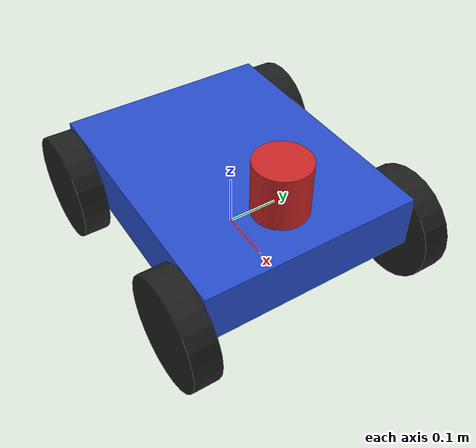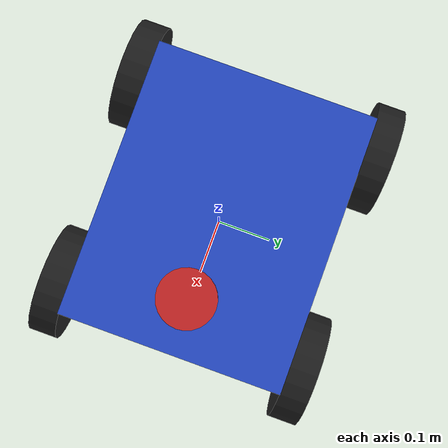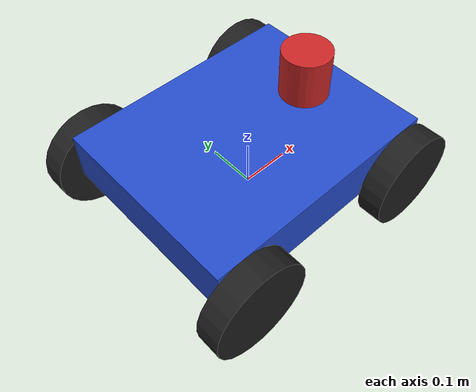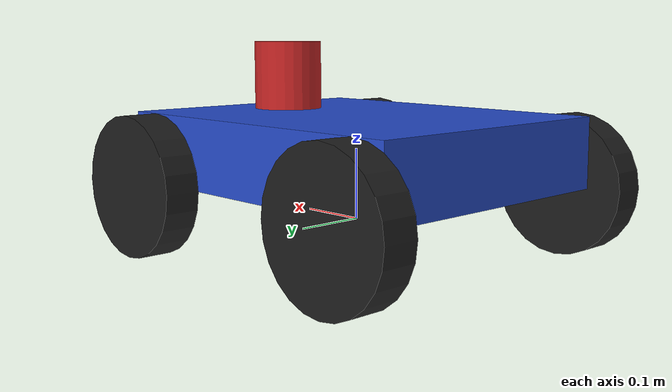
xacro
<?xml version="1.0"?>
<robot xmlns:xacro="http://www.ros.org/wiki/xacro" name="mecanum_robot">

  <!-- Include materials -->
  <xacro:include filename="$(find mecanum_description)/urdf/materials.xacro"/>

  <!-- Robot parameters -->
  <xacro:property name="base_width" value="0.4"/>
  <xacro:property name="base_length" value="0.5"/>
  <xacro:property name="base_height" value="0.1"/>
  <xacro:property name="wheel_radius" value="0.1"/>
  <xacro:property name="wheel_width" value="0.05"/>
  <xacro:property name="wheel_offset_x" value="0.2"/>
  <xacro:property name="wheel_offset_y" value="0.225"/>

  <!-- Base link -->
  <link name="base_link">
    <visual>
      <origin xyz="0 0 0" rpy="0 0 0"/>
      <geometry>
        <box size="${base_length} ${base_width} ${base_height}"/>
      </geometry>
      <material name="blue"/>
    </visual>
    <collision>
      <origin xyz="0 0 0" rpy="0 0 0"/>
      <geometry>
        <box size="${base_length} ${base_width} ${base_height}"/>
      </geometry>
    </collision>
    <inertial>
      <origin xyz="0 0 0" rpy="0 0 0"/>
      <mass value="10.0"/>
      <inertia ixx="0.133" ixy="0.0" ixz="0.0" iyy="0.208" iyz="0.0" izz="0.275"/>
    </inertial>
  </link>

  <!-- Base footprint (for navigation) -->
  <link name="base_footprint"/>

  <joint name="base_joint" type="fixed">
    <parent link="base_footprint"/>
    <child link="base_link"/>
    <origin xyz="0.0 0.0 ${wheel_radius}" rpy="0 0 0"/>
  </joint>

  <!-- Mecanum wheels macro -->
  <xacro:macro name="mecanum_wheel" params="prefix reflect_x reflect_y">
    <link name="${prefix}_wheel">
      <visual>
        <origin xyz="0 0 0" rpy="${pi/2} 0 0"/>
        <geometry>
          <cylinder radius="${wheel_radius}" length="${wheel_width}"/>
        </geometry>
        <material name="black"/>
      </visual>
      <collision>
        <origin xyz="0 0 0" rpy="${pi/2} 0 0"/>
        <geometry>
          <cylinder radius="${wheel_radius}" length="${wheel_width}"/>
        </geometry>
      </collision>
      <inertial>
        <origin xyz="0 0 0" rpy="${pi/2} 0 0"/>
        <mass value="1.0"/>
        <inertia ixx="0.0052" ixy="0.0" ixz="0.0" iyy="0.0052" iyz="0.0" izz="0.01"/>
      </inertial>
    </link>

    <joint name="${prefix}_wheel_joint" type="continuous">
      <parent link="base_link"/>
      <child link="${prefix}_wheel"/>
      <origin xyz="${reflect_x * wheel_offset_x} ${reflect_y * wheel_offset_y} ${-base_height/2}" rpy="0 0 0"/>
      <axis xyz="0 1 0"/>
    </joint>
  </xacro:macro>

  <!-- Create all four mecanum wheels -->
  <xacro:mecanum_wheel prefix="front_left" reflect_x="1" reflect_y="1"/>
  <xacro:mecanum_wheel prefix="front_right" reflect_x="1" reflect_y="-1"/>
  <xacro:mecanum_wheel prefix="rear_left" reflect_x="-1" reflect_y="1"/>
  <xacro:mecanum_wheel prefix="rear_right" reflect_x="-1" reflect_y="-1"/>

  <!-- Lidar mount -->
  <link name="lidar_link">
    <visual>
      <origin xyz="0 0 0" rpy="0 0 0"/>
      <geometry>
        <cylinder radius="0.05" length="0.1"/>
      </geometry>
      <material name="red"/>
    </visual>
    <collision>
      <origin xyz="0 0 0" rpy="0 0 0"/>
      <geometry>
        <cylinder radius="0.05" length="0.1"/>
      </geometry>
    </collision>
    <inertial>
      <origin xyz="0 0 0" rpy="0 0 0"/>
      <mass value="0.5"/>
      <inertia ixx="0.002" ixy="0.0" ixz="0.0" iyy="0.002" iyz="0.0" izz="0.00125"/>
    </inertial>
  </link>

  <joint name="lidar_joint" type="fixed">
    <parent link="base_link"/>
    <child link="lidar_link"/>
    <origin xyz="0.15 0 ${base_height/2 + 0.05}" rpy="0 0 0"/>
  </joint>

</robot>
